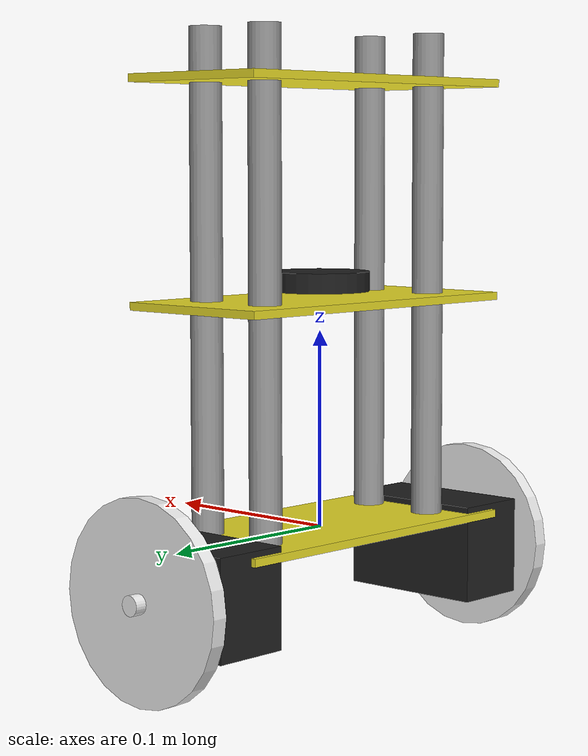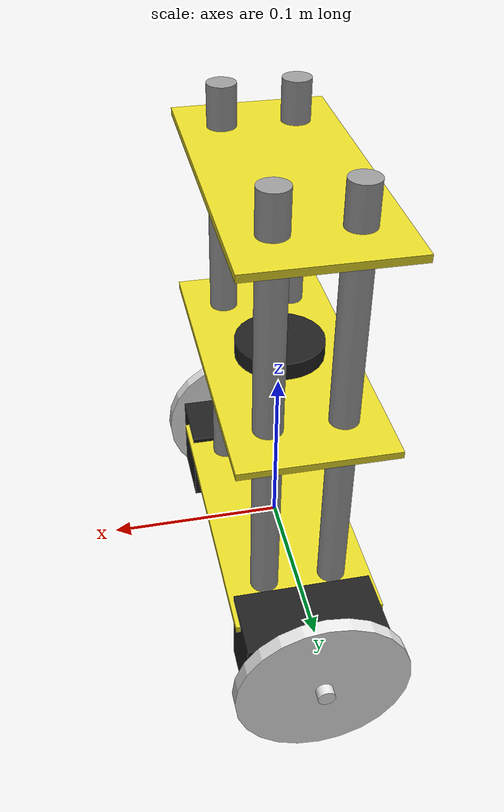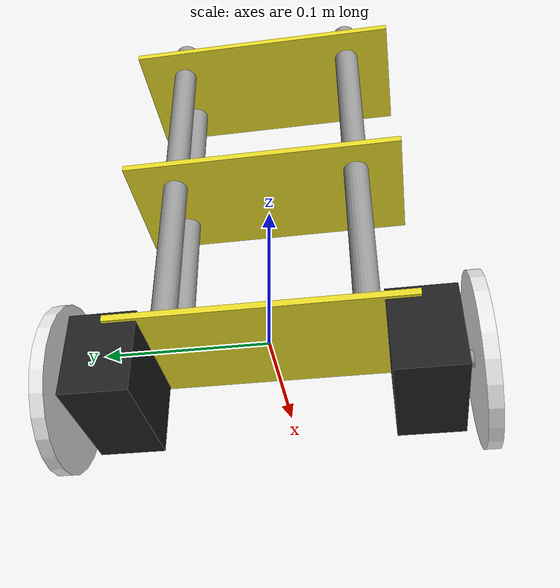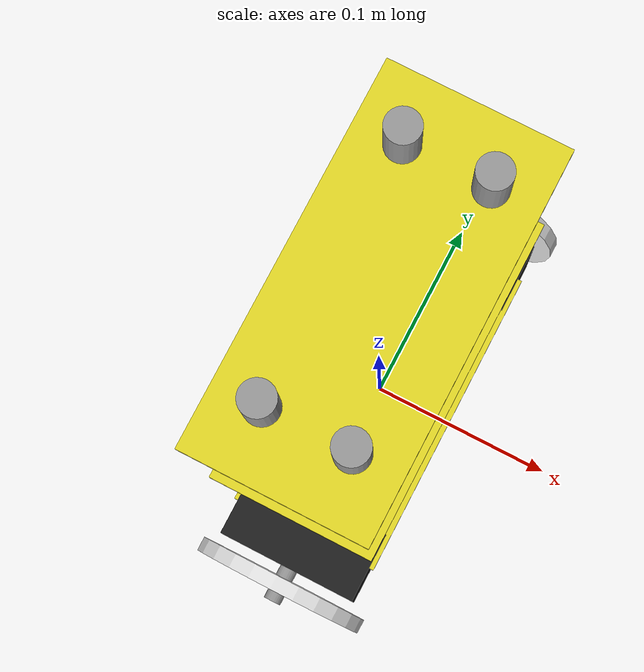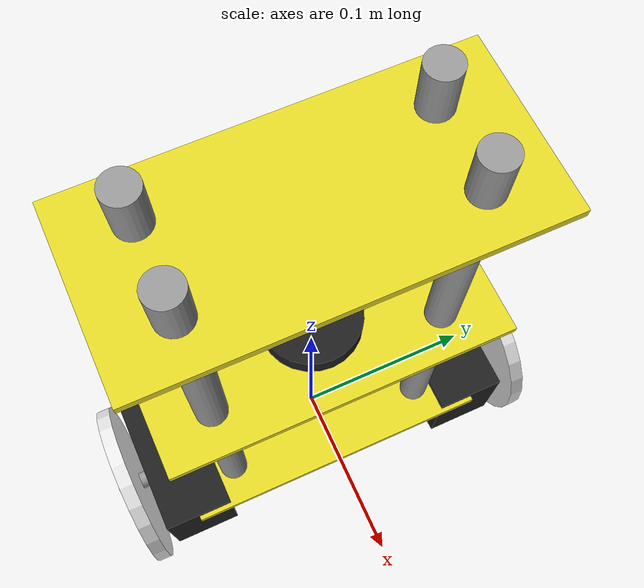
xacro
<?xml version="1.0" ?>
<robot name="myrobot" xmlns:xacro="http://www.ros.org/wiki/xacro">
<xacro:include filename="$(find m2wr_description)/urdf/materials.xacro" />
<xacro:include filename="$(find self_balancing_robot)/urdf/denge.gazebo" />

<!-- şase  -->
  <link name="link_chassis">
    <!-- pose and inertial -->
    <pose>0 0 0.1 0 0 0</pose>
    <inertial>
      <mass value="0.5"/>
      <origin rpy="0 0 0" xyz="0 0 0"/>
      <inertia ixx="0.00030170833" ixy="0" ixz="0" iyy="0.00165104166" iyz="0" izz="0.00135066666"/>
    </inertial>
    <!-- body -->
    <collision name="collision_chassis">
    <origin xyz="0 0 0" rpy="0 0 0"/>
      <geometry>
        <box size="0.085 0.18 0.004"/>
      </geometry>
    </collision>
    <visual>
      <origin rpy="0 0 0" xyz="0 0 0"/>
      <geometry>
        <box size="0.085 0.18 0.004"/>
      </geometry>
      <material name="yellow"/>
    </visual>
</link>

<link name="link_chassis_2">
  <inertial>
    <mass value = "0.5"/>
    <origin xyz="0 0 0" rpy="0 0 0"/>
    <inertia ixx="0.00030170833" ixy="0" ixz="0" iyy="0.00165104166" iyz="0" izz="0.00135066666"/>
    </inertial>
    <visual>
        <origin xyz="0 0 0" rpy="0 0 0" />
        <geometry>
        <box size="0.085 0.18 0.004"/>
        </geometry>
        <material name="yellow" />
    </visual>
    <collision>
        <origin xyz="0 0 0" rpy="0 0 0"/>
        <geometry>
        <box size="0.085 0.18 0.004"/>
        </geometry>
    </collision>
    </link>
      <joint name="joint_chassis_2" type="fixed">
      <origin xyz="0 0 0.225" rpy="0 0 0"/>
      <parent link="link_chassis"/>
      <child link="link_chassis_2"/>
  </joint>

  <link name="link_chassis_3">
  <inertial>
    <mass value = "0.5"/>
    <origin xyz="0 0 0" rpy="0 0 0"/>
    <inertia ixx="0.00030170833" ixy="0" ixz="0" iyy="0.00165104166" iyz="0" izz="0.00135066666"/>
    </inertial>
    <visual>
        <origin xyz="0 0 0" rpy="0 0 0" />
        <geometry>
        <box size="0.085 0.18 0.004"/>
        </geometry>
        <material name="yellow" />
    </visual>
    <collision>
        <origin xyz="0 0 0" rpy="0 0 0"/>
        <geometry>
        <box size="0.085 0.18 0.004"/>
        </geometry>
    </collision>
    </link>
      <joint name="joint_chassis_3" type="fixed">
      <origin xyz="0 0 0.115" rpy="0 0 0"/>
      <parent link="link_chassis"/>
      <child link="link_chassis_3"/>
  </joint>

<!--motorlar-->>

<link name="tekerlek_motor_sag">
  <inertial>
    <mass value = "0.2"/>
    <origin xyz="0 0 0" rpy="0 0 0"/>
    <inertia ixx="0.0001" ixy="0" ixz="0" iyy="0.00013" iyz="0" izz="4.541666666666668e-05" />
    </inertial>
    <visual>
        <origin xyz="0 0 0" rpy="0 0 0" />
        <geometry>
        <box size="0.08 0.04 0.05"/>
        </geometry>
        <material name="black" />
    </visual>
    <collision>
        <origin xyz="0 0 0" rpy="0 0 0"/>
        <geometry>
        <box size="0.08 0.04 0.05"/>
        </geometry>
    </collision>
    </link>
      <joint name="joint_motor_sag" type="fixed">
      <origin xyz="0 0.09 -0.02" rpy="0 0 0"/>
      <parent link="link_chassis"/>
      <child link="tekerlek_motor_sag"/>
  </joint>

<link name="tekerlek_motor_sol">
   <inertial>
    <mass value = "0.2"/>
    <origin xyz="0 0 0" rpy="0 0 0"/>
    <inertia ixx="0.0001" ixy="0" ixz="0" iyy="0.00013" iyz="0" izz="4.541666666666668e-5" />
    </inertial>
    <visual>
        <origin xyz="0 0 0" rpy="0 0 0" />
        <geometry>
        <box size="0.08 0.04 0.05"/>
        </geometry>
        <material name="black" />
    </visual>
    <collision>
        <origin xyz="0 0 0" rpy="0 0 0"/>
        <geometry>
       <box size="0.08 0.04 0.05"/>
        </geometry>
    </collision>
    </link>
      <joint name="joint_motor_sol" type="fixed">
       <origin xyz="0 -0.09 -0.02" rpy="0 0 0"/>
      <parent link="link_chassis"/>
      <child link="tekerlek_motor_sol"/>
 </joint>

<!--teker ile motor arasındaki cubuklar -->
<!--SAG CUBUK-->
<link name="teker_cubuk_sag">
    <inertial>
      <mass value="0.05" />
      <origin xyz="0 0 0" rpy="1.570796327 0 0"/>
      <inertia ixx="6.6666666666666675e-6" ixy="0" ixz="0" iyy="0" iyz="0" izz="6.6666666666666675e-06" />
    </inertial>
        <visual>
        <origin xyz="0 0 0" rpy="1.570796327 0 0"/>
        <geometry>
        <cylinder radius="0.005" length="0.02"/>
        </geometry>
        <material name="white" />
    </visual>

    <collision>
        <origin xyz="0 0 0" rpy="1.570796327 0 0"/>
        <geometry>
        <cylinder radius="0.005" length="0.02"/>
        </geometry>
    </collision>
    </link>

    <joint name="joint_cubuk_sag" type="fixed">
    <origin xyz="0 0.03 0" rpy=" 0 0 0"/>
    <parent link="tekerlek_motor_sag"/>
    <child link="teker_cubuk_sag"/>
  </joint>
 <!--SOL CUBUK-->
   <link name="teker_cubuk_sol">
    <inertial>
      <mass value="0.05" />
      <origin xyz="0 0 0" rpy="1.570796327 0 0"/>
      <inertia ixx="6.6666666666666675e-06" ixy="0" ixz="0" iyy="0" iyz="0" izz="6.6666666666666675e-06" />
    </inertial>
        <visual>
        <origin xyz="0 0 0" rpy="1.570796327 0 0"/>
        <geometry>
        <cylinder radius="0.005" length="0.02"/>
        </geometry>
        <material name="gray" />
    </visual>

    <collision>
        <origin xyz="0 0 0" rpy="1.570796327 0 0"/>
        <geometry>
        <cylinder radius="0.005" length="0.02"/>
        </geometry>
    </collision>
    </link>

    <joint name="joint_cubuk_sol" type="fixed">
    <origin xyz="0 -0.03 0" rpy=" 0 0 0"/>
    <parent link="tekerlek_motor_sol"/>
    <child link="teker_cubuk_sol"/>
</joint>

  <!--sağ tekerlek-->

<link name="link_right_wheel">
    <inertial>
      <mass value="1"/>
      <origin rpy="0 1.5707 1.5707" xyz="0 0 0"/>
      <inertia ixx="0.0006" ixy="0" ixz="0" iyy="0.0006" iyz="0" izz="0.00125"/>
    </inertial>
    <collision name="link_right_wheel_collision">
      <origin rpy="0 1.5707 1.5707" xyz="0 0 0"/>
      <geometry>
        <cylinder length="0.008" radius="0.05"/>
      </geometry>
    </collision>
    <visual name="link_right_wheel_visual">
      <origin rpy="0 1.5707 1.5707" xyz="0 0 0"/>
      <geometry>
        <cylinder length="0.008" radius="0.05"/>
      </geometry>
    </visual>
  </link>

  <joint name="joint_right_wheel" type="continuous">
    <origin rpy="0 0 0" xyz="0 0 0"/>
    <child link="link_right_wheel"/>
    <parent link="teker_cubuk_sag"/>
    <axis rpy="0 0 0" xyz="0 1 0"/>
    <limit effort="10000" velocity="1000"/>
    <joint_properties damping="1.0" friction="1.0"/>
</joint>

<!--sol tekerlek -->

<link name="link_left_wheel">
    <inertial>
      <mass value="1"/>
      <origin rpy="0 1.5707 1.5707" xyz="0 0 0"/>
      <inertia ixx="0.0006" ixy="0" ixz="0" iyy="0.0006" iyz="0" izz="0.00125"/>
    </inertial>
    <collision name="link_left_wheel_collision">
     <origin rpy="0 1.5707 1.5707" xyz="0 0 0"/>
      <geometry>
       <cylinder length="0.008" radius="0.05"/>
      </geometry>
    </collision>
    <visual name="link_left_wheel_visual">
      <origin rpy="0 1.5707 1.5707" xyz="0 0 0"/>
      <geometry>
        <cylinder length="0.008" radius="0.05"/>
      </geometry>
    </visual>
  </link>

  <joint name="joint_left_wheel" type="continuous">
    <origin rpy="0 0 0" xyz="0 0 0"/>
    <child link="link_left_wheel"/>
    <parent link="teker_cubuk_sol"/>
    <axis rpy="0 0 0" xyz="0 1 0"/>
    <limit effort="10000" velocity="1000"/>
    <joint_properties damping="1.0" friction="1.0"/>
</joint>

 <!-- cubuklar -->

  <link name="cubuk_1">
    <inertial>
      <mass value="0.125" />
      <origin xyz="0 0 0" rpy="0 0 0"/>
      <inertia ixx="0.0007030433333333334" ixy="0" ixz="0" iyy="0.0007030433333333334" iyz="0" izz="8e-06" />
    </inertial>
        <visual>
        <origin xyz="0 0 0" rpy="0 0 0" />
        <geometry>
        <cylinder radius="0.008" length="0.25"/>
        </geometry>
        <material name="gray" />
    </visual>

    <collision>
        <origin xyz="0 0 0" rpy="0 0 0"/>
        <geometry>
        <cylinder radius="0.008" length="0.25"/>
        </geometry>
    </collision>
    </link>

    <joint name="joint_cubuk_1" type="fixed">
    <origin xyz="0.02 0.06 0.125" rpy="0 0 0"/>
    <parent link="link_chassis"/>
    <child link="cubuk_1"/>
    </joint>

  <link name="cubuk_2">
    <inertial>
      <mass value="0.125" />
      <origin xyz="0 0 0" rpy="0 0 0"/>
       <inertia ixx="0.0007030433333333334" ixy="0" ixz="0" iyy="0.0007030433333333334" iyz="0" izz="8e-06" />
    </inertial>
        <visual>
        <origin xyz="0 0 0" rpy="0 0 0" />
        <geometry>
        <cylinder radius="0.008" length="0.25"/>
        </geometry>
        <material name="gray" />
    </visual>

    <collision>
        <origin xyz="0 0 0" rpy="0 0 0"/>
        <geometry>
        <cylinder radius="0.008" length="0.25"/>
        </geometry>
    </collision>
    </link>

    <joint name="joint_cubuk_2" type="fixed">
    <origin xyz="-0.02 0.06 0.125" rpy="0 0 0"/>
    <parent link="link_chassis"/>
    <child link="cubuk_2"/>
     </joint>

  <link name="cubuk_3">
    <inertial>
      <mass value="0.125" />
      <origin xyz="0 0 0" rpy="0 0 0"/>
       <inertia ixx="0.0007030433333333334" ixy="0" ixz="0" iyy="0.0007030433333333334" iyz="0" izz="8e-06" />
    </inertial>
        <visual>
        <origin xyz="0 0 0" rpy="0 0 0" />
        <geometry>
        <cylinder radius="0.008" length="0.25"/>
        </geometry>
        <material name="gray" />
    </visual>

    <collision>
        <origin xyz="0 0 0" rpy="0 0 0"/>
        <geometry>
        <cylinder radius="0.008" length="0.25"/>
        </geometry>
    </collision>
    </link>

    <joint name="joint_cubuk_3" type="fixed">
    <origin xyz="0.02 -0.06 0.125" rpy="0 0 0"/>
    <parent link="link_chassis"/>
    <child link="cubuk_3"/>
   </joint>

  <link name="cubuk_4">
    <inertial>
      <mass value="0.125" />
      <origin xyz="0 0 0" rpy="0 0 0"/>
       <inertia ixx="0.0007030433333333334" ixy="0" ixz="0" iyy="0.0007030433333333334" iyz="0" izz="8e-06" />
    </inertial>
        <visual>
        <origin xyz="0 0 0" rpy="0 0 0" />
        <geometry>
        <cylinder radius="0.008" length="0.25"/>
        </geometry>
        <material name="gray" />
    </visual>

    <collision>
        <origin xyz="0 0 0" rpy="0 0 0"/>
        <geometry>
        <cylinder radius="0.008" length="0.25"/>
        </geometry>
    </collision>
    </link>

    <joint name="joint_cubuk_4" type="fixed">
    <origin xyz="-0.02 -0.06 0.125" rpy="0 0 0"/>
    <parent link="link_chassis"/>
    <child link="cubuk_4"/>
  </joint>

<link name="sensor_laser">
    <inertial>
      <mass value="1e-5" />
      <origin xyz="0 0 0" rpy="0 0 0"/>
      <inertia ixx="1e-6" ixy="0" ixz="0" iyy="1e-6" iyz="0" izz="1e-6" />
    </inertial>
        <visual>
        <origin xyz="0 0 0" rpy="0 0 0" />
        <geometry>
        <cylinder radius="0.025" length="0.01"/>
        </geometry>
        <material name="black" />
    </visual>

    <collision>
        <origin xyz="0 0 0" rpy="0 0 0"/>
        <geometry>
        <cylinder radius="0.025" length="0.02"/>
        </geometry>
    </collision>
    </link>

    <joint name="joint_sensor_laser" type="fixed">
    <origin xyz="0.0 0 0.125" rpy="0 0 0"/>
    <parent link="link_chassis"/>
    <child link="sensor_laser"/>
  </joint>

</robot>
